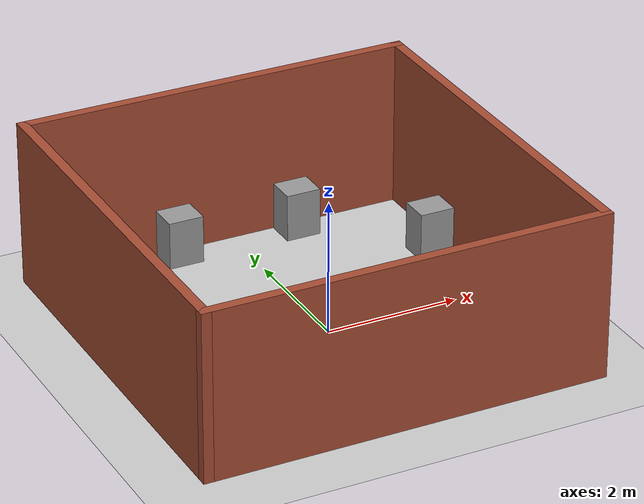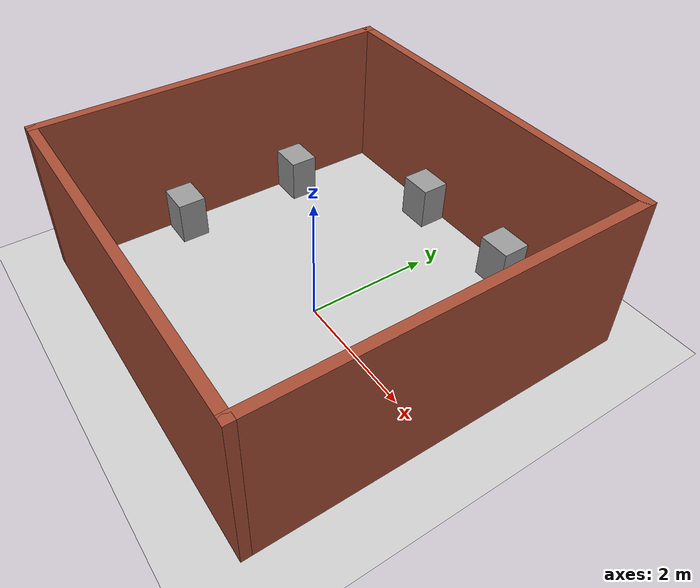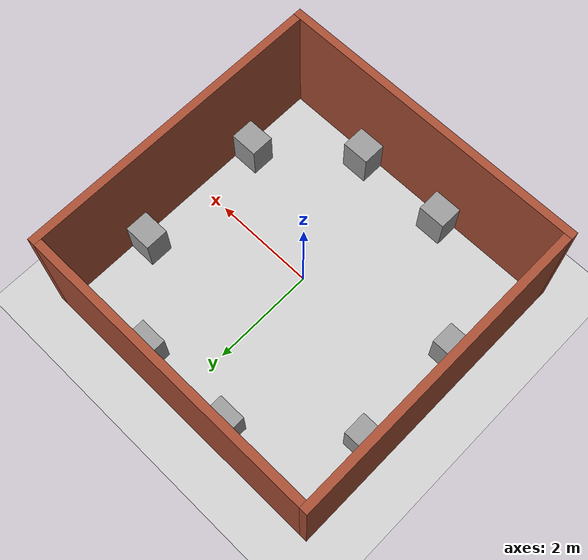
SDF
<sdf version="1.6">
 <world name="default">
  <light name="sun" type="directional">
   <pose>0 0 10 0 -0 0</pose>
   <diffuse>0.8 0.8 0.8 1</diffuse>
   <specular>0.2 0.2 0.2 1</specular>
   <attenuation>
    <range>1000</range>
    <constant>0.9</constant>
    <linear>0.01</linear>
    <quadratic>0.001</quadratic>
   </attenuation>
   <direction>-0.5 0.1 -0.9</direction>
  </light>
  <model name="ground_plane">
   <static>1</static>
   <link name="link">
    <collision name="collision">
     <geometry><plane><normal>0 0 1</normal><size>100 100</size></plane></geometry>
     <surface>
      <contact><collide_bitmask>65535</collide_bitmask></contact>
      <friction><ode><mu>100</mu><mu2>50</mu2></ode></friction>
     </surface>
    </collision>
    <visual name="visual">
     <cast_shadows>0</cast_shadows>
     <geometry><plane><normal>0 0 1</normal><size>100 100</size></plane></geometry>
     <material>
      <script><uri>file://media/materials/scripts/gazebo.material</uri><name>Gazebo/Grey</name></script>
     </material>
    </visual>
   </link>
  </model>
  <gravity>0 0 -9.8</gravity>
  <magnetic_field>6e-06 2.3e-05 -4.2e-05</magnetic_field>
  <atmosphere type="adiabatic"/>
  <physics name="default_physics" default="0" type="ode">
   <max_step_size>0.001</max_step_size>
   <real_time_factor>1</real_time_factor>
   <real_time_update_rate>1000</real_time_update_rate>
  </physics>
  <scene><ambient>0.4 0.4 0.4 1</ambient><background>0.7 0.7 0.7 1</background><shadows>1</shadows></scene>
  <audio><device>default</device></audio>
  <spherical_coordinates>
   <surface_model>EARTH_WGS84</surface_model>
   <latitude_deg>0</latitude_deg>
   <longitude_deg>0</longitude_deg>
   <elevation>0</elevation>
   <heading_deg>0</heading_deg>
  </spherical_coordinates>
  <model name="walls6brick">
   <pose>-0.204822 0.224636 0 0 -0 0</pose>
   <link name="Wall_6">
    <collision name="Wall_6_Collision">
     <geometry><box><size>6 0.15 2.5</size></box></geometry>
     <pose>0 0 1.25 0 -0 0</pose>
    </collision>
    <visual name="Wall_6_Visual">
     <pose>0 0 1.25 0 -0 0</pose>
     <geometry><box><size>6 0.15 2.5</size></box></geometry>
     <material>
      <script><uri>file://media/materials/scripts/gazebo.material</uri><name>Gazebo/Bricks</name></script>
      <ambient>1 1 1 1</ambient>
     </material>
     <meta><layer>0</layer></meta>
    </visual>
    <pose>0 -2.925 0 0 -0 3.14159</pose>
   </link>
   <link name="Wall_7">
    <collision name="Wall_7_Collision">
     <geometry><box><size>6 0.15 2.5</size></box></geometry>
     <pose>0 0 1.25 0 -0 0</pose>
    </collision>
    <visual name="Wall_7_Visual">
     <pose>0 0 1.25 0 -0 0</pose>
     <geometry><box><size>6 0.15 2.5</size></box></geometry>
     <material>
      <script><uri>file://media/materials/scripts/gazebo.material</uri><name>Gazebo/Bricks</name></script>
      <ambient>1 1 1 1</ambient>
     </material>
     <meta><layer>0</layer></meta>
    </visual>
    <pose>-2.925 0 0 0 -0 1.5708</pose>
   </link>
   <link name="Wall_8">
    <collision name="Wall_8_Collision">
     <geometry><box><size>6 0.15 2.5</size></box></geometry>
     <pose>0 0 1.25 0 -0 0</pose>
    </collision>
    <visual name="Wall_8_Visual">
     <pose>0 0 1.25 0 -0 0</pose>
     <geometry><box><size>6 0.15 2.5</size></box></geometry>
     <material>
      <script><uri>file://media/materials/scripts/gazebo.material</uri><name>Gazebo/Bricks</name></script>
      <ambient>1 1 1 1</ambient>
     </material>
     <meta><layer>0</layer></meta>
    </visual>
    <pose>0 2.925 0 0 -0 0</pose>
   </link>
   <link name="Wall_9">
    <collision name="Wall_9_Collision">
     <geometry><box><size>6 0.15 2.5</size></box></geometry>
     <pose>0 0 1.25 0 -0 0</pose>
    </collision>
    <visual name="Wall_9_Visual">
     <pose>0 0 1.25 0 -0 0</pose>
     <geometry><box><size>6 0.15 2.5</size></box></geometry>
     <material>
      <script><uri>file://media/materials/scripts/gazebo.material</uri><name>Gazebo/Bricks</name></script>
      <ambient>1 1 1 1</ambient>
     </material>
     <meta><layer>0</layer></meta>
    </visual>
    <pose>2.925 0 0 0 -0 -1.5708</pose>
   </link>
   <static>1</static>
  </model>
  <model name="unit_box">
   <pose>-0.986995 -2.39918 0.363176 0 -0 0</pose>
   <link name="link">
    <inertial>
     <mass>1</mass>
     <inertia>
      <ixx>0.166667</ixx>
      <ixy>0</ixy>
      <ixz>0</ixz>
      <iyy>0.166667</iyy>
      <iyz>0</iyz>
      <izz>0.166667</izz>
     </inertia>
    </inertial>
    <collision name="collision">
     <geometry><box><size>0.529723 0.452373 0.726352</size></box></geometry>
    </collision>
    <visual name="visual">
     <geometry><box><size>0.529723 0.452373 0.726352</size></box></geometry>
     <material>
      <script><name>Gazebo/Grey</name><uri>file://media/materials/scripts/gazebo.material</uri></script>
     </material>
    </visual>
   </link>
  </model>
  <model name="unit_box_clone">
   <pose>0.831903 -2.39918 0.363176 0 -0 -8e-06</pose>
   <link name="link">
    <inertial>
     <mass>1</mass>
     <inertia>
      <ixx>0.166667</ixx>
      <ixy>0</ixy>
      <ixz>0</ixz>
      <iyy>0.166667</iyy>
      <iyz>0</iyz>
      <izz>0.166667</izz>
     </inertia>
    </inertial>
    <collision name="collision">
     <geometry><box><size>0.529723 0.452373 0.726352</size></box></geometry>
    </collision>
    <visual name="visual">
     <geometry><box><size>0.529723 0.452373 0.726352</size></box></geometry>
     <material>
      <script><name>Gazebo/Grey</name><uri>file://media/materials/scripts/gazebo.material</uri></script>
     </material>
    </visual>
   </link>
  </model>
  <model name="unit_box_clone_0">
   <pose>2.38031 -1.11588 0.363176 0 0 -6e-06</pose>
   <link name="link">
    <inertial>
     <mass>1</mass>
     <inertia>
      <ixx>0.166667</ixx>
      <ixy>0</ixy>
      <ixz>0</ixz>
      <iyy>0.166667</iyy>
      <iyz>0</iyz>
      <izz>0.166667</izz>
     </inertia>
    </inertial>
    <collision name="collision">
     <geometry><box><size>0.529723 0.452373 0.726352</size></box></geometry>
    </collision>
    <visual name="visual">
     <geometry><box><size>0.529723 0.452373 0.726352</size></box></geometry>
     <material>
      <script><name>Gazebo/Grey</name><uri>file://media/materials/scripts/gazebo.material</uri></script>
     </material>
    </visual>
   </link>
  </model>
  <model name="unit_box_clone_1">
   <pose>2.38032 1.45574 0.363176 0 -0 -6e-06</pose>
   <link name="link">
    <inertial>
     <mass>1</mass>
     <inertia>
      <ixx>0.166667</ixx>
      <ixy>0</ixy>
      <ixz>0</ixz>
      <iyy>0.166667</iyy>
      <iyz>0</iyz>
      <izz>0.166667</izz>
     </inertia>
    </inertial>
    <collision name="collision">
     <geometry><box><size>0.529723 0.452373 0.726352</size></box></geometry>
    </collision>
    <visual name="visual">
     <geometry><box><size>0.529723 0.452373 0.726352</size></box></geometry>
     <material>
      <script><name>Gazebo/Grey</name><uri>file://media/materials/scripts/gazebo.material</uri></script>
     </material>
    </visual>
   </link>
  </model>
  <model name="unit_box_clone_2">
   <pose>0.936216 2.83963 0.363176 0 -0 0</pose>
   <link name="link">
    <inertial>
     <mass>1</mass>
     <inertia>
      <ixx>0.166667</ixx>
      <ixy>0</ixy>
      <ixz>0</ixz>
      <iyy>0.166667</iyy>
      <iyz>0</iyz>
      <izz>0.166667</izz>
     </inertia>
    </inertial>
    <collision name="collision">
     <geometry><box><size>0.529723 0.452373 0.726352</size></box></geometry>
    </collision>
    <visual name="visual">
     <geometry><box><size>0.529723 0.452373 0.726352</size></box></geometry>
     <material>
      <script><name>Gazebo/Grey</name><uri>file://media/materials/scripts/gazebo.material</uri></script>
     </material>
    </visual>
   </link>
  </model>
  <model name="unit_box_clone_3">
   <pose>-0.933966 2.83228 0.363176 0 -0 0</pose>
   <link name="link">
    <inertial>
     <mass>1</mass>
     <inertia>
      <ixx>0.166667</ixx>
      <ixy>0</ixy>
      <ixz>0</ixz>
      <iyy>0.166667</iyy>
      <iyz>0</iyz>
      <izz>0.166667</izz>
     </inertia>
    </inertial>
    <collision name="collision">
     <geometry><box><size>0.529723 0.452373 0.726352</size></box></geometry>
    </collision>
    <visual name="visual">
     <geometry><box><size>0.529723 0.452373 0.726352</size></box></geometry>
     <material>
      <script><name>Gazebo/Grey</name><uri>file://media/materials/scripts/gazebo.material</uri></script>
     </material>
    </visual>
   </link>
  </model>
  <model name="unit_box_clone_4">
   <pose>-2.78996 1.42685 0.363176 0 -0 6e-06</pose>
   <link name="link">
    <inertial>
     <mass>1</mass>
     <inertia>
      <ixx>0.166667</ixx>
      <ixy>0</ixy>
      <ixz>0</ixz>
      <iyy>0.166667</iyy>
      <iyz>0</iyz>
      <izz>0.166667</izz>
     </inertia>
    </inertial>
    <collision name="collision">
     <geometry><box><size>0.529723 0.452373 0.726352</size></box></geometry>
    </collision>
    <visual name="visual">
     <geometry><box><size>0.529723 0.452373 0.726352</size></box></geometry>
     <material>
      <script><name>Gazebo/Grey</name><uri>file://media/materials/scripts/gazebo.material</uri></script>
     </material>
    </visual>
   </link>
  </model>
  <model name="unit_box_clone_5">
   <pose>-2.7822 -0.717731 0.363176 0 -0 0</pose>
   <link name="link">
    <inertial>
     <mass>1</mass>
     <inertia>
      <ixx>0.166667</ixx>
      <ixy>0</ixy>
      <ixz>0</ixz>
      <iyy>0.166667</iyy>
      <iyz>0</iyz>
      <izz>0.166667</izz>
     </inertia>
    </inertial>
    <collision name="collision">
     <geometry><box><size>0.529723 0.452373 0.726352</size></box></geometry>
    </collision>
    <visual name="visual">
     <geometry><box><size>0.529723 0.452373 0.726352</size></box></geometry>
     <material>
      <script><name>Gazebo/Grey</name><uri>file://media/materials/scripts/gazebo.material</uri></script>
     </material>
    </visual>
   </link>
  </model>
 </world>
</sdf>
